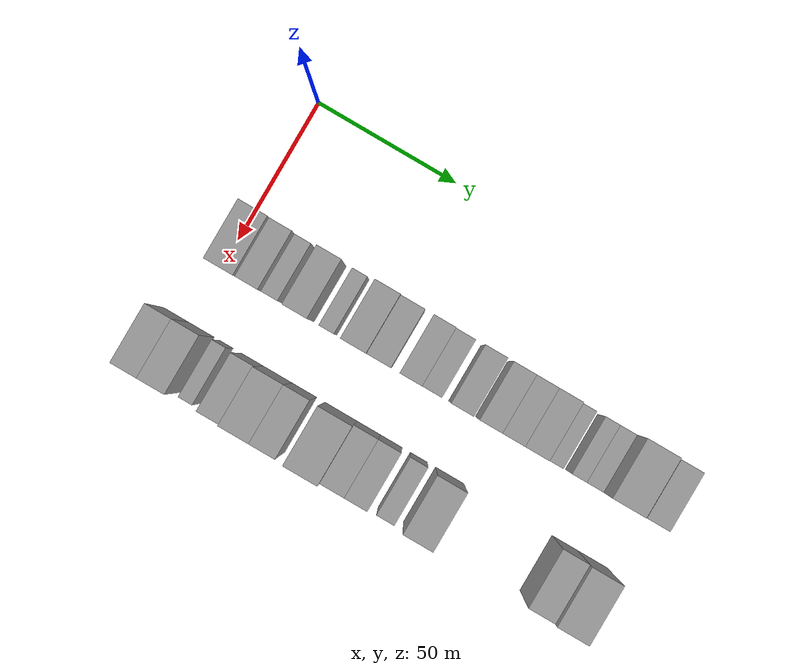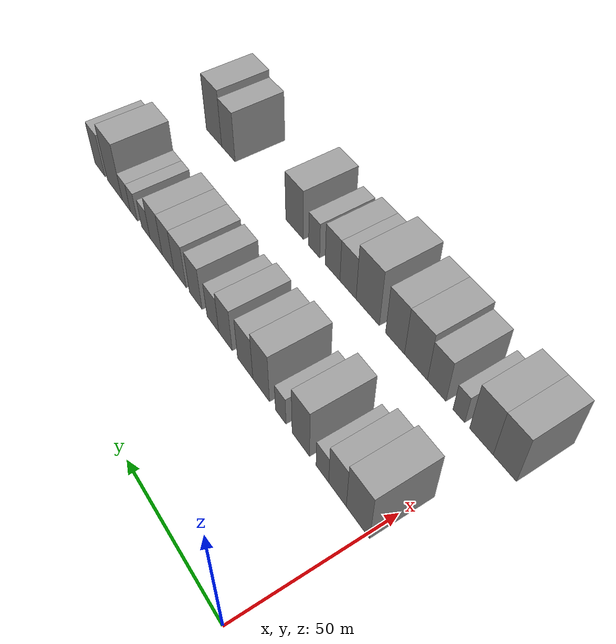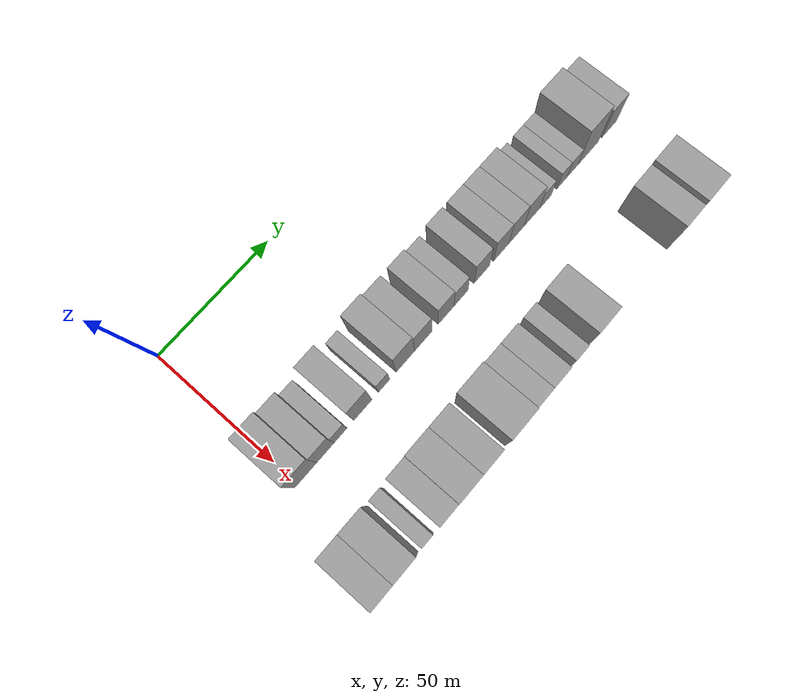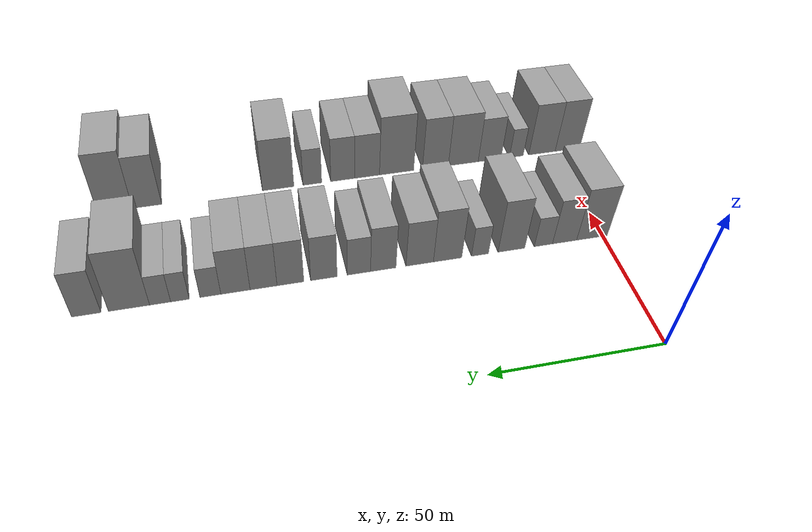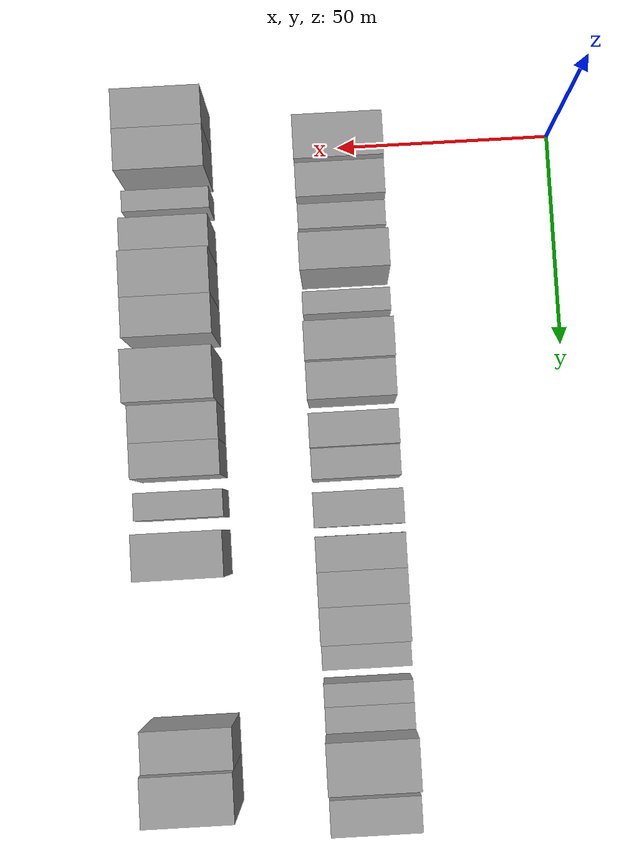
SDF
<sdf version="1.6">
 <world name="default">
  <model name="building_29">
   <static>1</static>
   <pose>50.0000 3.5850 0 0.000000 0.000000 0.000000</pose>
   <link name="link">
    <pose>0 0 10.50 0 0 0</pose>
    <collision name="collision"><geometry><box><size>20.0000 9.9423 21.0000</size></box></geometry></collision>
    <visual name="visual">
     <cast_shadows>0</cast_shadows>
     <geometry><box><size>20.0000 9.9423 21.0000</size></box></geometry>
     <material>
      <script>
       <uri>model://grey_wall/materials/scripts</uri>
       <uri>model://grey_wall/materials/textures</uri>
       <name>vrc/grey_wall</name>
      </script>
     </material>
    </visual>
   </link>
  </model>
  <model name="building_30">
   <static>1</static>
   <pose>50.0000 12.4400 0 0.000000 0.000000 0.000000</pose>
   <link name="link">
    <pose>0 0 9.00 0 0 0</pose>
    <collision name="collision"><geometry><box><size>20.0000 7.7675 18.0000</size></box></geometry></collision>
    <visual name="visual">
     <cast_shadows>0</cast_shadows>
     <geometry><box><size>20.0000 7.7675 18.0000</size></box></geometry>
     <material>
      <script>
       <uri>model://grey_wall/materials/scripts</uri>
       <uri>model://grey_wall/materials/textures</uri>
       <name>vrc/grey_wall</name>
      </script>
     </material>
    </visual>
   </link>
  </model>
  <model name="building_31">
   <static>1</static>
   <pose>50.0000 19.2083 0 0.000000 0.000000 0.000000</pose>
   <link name="link">
    <pose>0 0 6.00 0 0 0</pose>
    <collision name="collision"><geometry><box><size>20.0000 5.7690 12.0000</size></box></geometry></collision>
    <visual name="visual">
     <cast_shadows>0</cast_shadows>
     <geometry><box><size>20.0000 5.7690 12.0000</size></box></geometry>
     <material>
      <script>
       <uri>model://grey_wall/materials/scripts</uri>
       <uri>model://grey_wall/materials/textures</uri>
       <name>vrc/grey_wall</name>
      </script>
     </material>
    </visual>
   </link>
  </model>
  <model name="building_32">
   <static>1</static>
   <pose>50.0000 29.2972 0 0.000000 0.000000 0.000000</pose>
   <link name="link">
    <pose>0 0 10.50 0 0 0</pose>
    <collision name="collision"><geometry><box><size>20.0000 8.4088 21.0000</size></box></geometry></collision>
    <visual name="visual">
     <cast_shadows>0</cast_shadows>
     <geometry><box><size>20.0000 8.4088 21.0000</size></box></geometry>
     <material>
      <script>
       <uri>model://grey_wall/materials/scripts</uri>
       <uri>model://grey_wall/materials/textures</uri>
       <name>vrc/grey_wall</name>
      </script>
     </material>
    </visual>
   </link>
  </model>
  <model name="building_33">
   <static>1</static>
   <pose>50.0000 39.1456 0 0.000000 0.000000 0.000000</pose>
   <link name="link">
    <pose>0 0 6.00 0 0 0</pose>
    <collision name="collision"><geometry><box><size>20.0000 5.2881 12.0000</size></box></geometry></collision>
    <visual name="visual">
     <cast_shadows>0</cast_shadows>
     <geometry><box><size>20.0000 5.2881 12.0000</size></box></geometry>
     <material>
      <script>
       <uri>model://grey_wall/materials/scripts</uri>
       <uri>model://grey_wall/materials/textures</uri>
       <name>vrc/grey_wall</name>
      </script>
     </material>
    </visual>
   </link>
  </model>
  <model name="building_34">
   <static>1</static>
   <pose>50.0000 49.1430 0 0.000000 0.000000 0.000000</pose>
   <link name="link">
    <pose>0 0 10.50 0 0 0</pose>
    <collision name="collision"><geometry><box><size>20.0000 8.7066 21.0000</size></box></geometry></collision>
    <visual name="visual">
     <cast_shadows>0</cast_shadows>
     <geometry><box><size>20.0000 8.7066 21.0000</size></box></geometry>
     <material>
      <script>
       <uri>model://grey_wall/materials/scripts</uri>
       <uri>model://grey_wall/materials/textures</uri>
       <name>vrc/grey_wall</name>
      </script>
     </material>
    </visual>
   </link>
  </model>
  <model name="building_35">
   <static>1</static>
   <pose>50.0000 57.6699 0 0.000000 0.000000 0.000000</pose>
   <link name="link">
    <pose>0 0 9.00 0 0 0</pose>
    <collision name="collision"><geometry><box><size>20.0000 8.3474 18.0000</size></box></geometry></collision>
    <visual name="visual">
     <cast_shadows>0</cast_shadows>
     <geometry><box><size>20.0000 8.3474 18.0000</size></box></geometry>
     <material>
      <script>
       <uri>model://grey_wall/materials/scripts</uri>
       <uri>model://grey_wall/materials/textures</uri>
       <name>vrc/grey_wall</name>
      </script>
     </material>
    </visual>
   </link>
  </model>
  <model name="building_36">
   <static>1</static>
   <pose>50.0000 68.6641 0 0.000000 0.000000 0.000000</pose>
   <link name="link">
    <pose>0 0 9.00 0 0 0</pose>
    <collision name="collision"><geometry><box><size>20.0000 7.6409 18.0000</size></box></geometry></collision>
    <visual name="visual">
     <cast_shadows>0</cast_shadows>
     <geometry><box><size>20.0000 7.6409 18.0000</size></box></geometry>
     <material>
      <script>
       <uri>model://grey_wall/materials/scripts</uri>
       <uri>model://grey_wall/materials/textures</uri>
       <name>vrc/grey_wall</name>
      </script>
     </material>
    </visual>
   </link>
  </model>
  <model name="building_37">
   <static>1</static>
   <pose>50.0000 75.9450 0 0.000000 0.000000 0.000000</pose>
   <link name="link">
    <pose>0 0 7.50 0 0 0</pose>
    <collision name="collision"><geometry><box><size>20.0000 6.9210 15.0000</size></box></geometry></collision>
    <visual name="visual">
     <cast_shadows>0</cast_shadows>
     <geometry><box><size>20.0000 6.9210 15.0000</size></box></geometry>
     <material>
      <script>
       <uri>model://grey_wall/materials/scripts</uri>
       <uri>model://grey_wall/materials/textures</uri>
       <name>vrc/grey_wall</name>
      </script>
     </material>
    </visual>
   </link>
  </model>
  <model name="building_38">
   <static>1</static>
   <pose>50.0000 86.2765 0 0.000000 0.000000 0.000000</pose>
   <link name="link">
    <pose>0 0 9.00 0 0 0</pose>
    <collision name="collision"><geometry><box><size>20.0000 7.7419 18.0000</size></box></geometry></collision>
    <visual name="visual">
     <cast_shadows>0</cast_shadows>
     <geometry><box><size>20.0000 7.7419 18.0000</size></box></geometry>
     <material>
      <script>
       <uri>model://grey_wall/materials/scripts</uri>
       <uri>model://grey_wall/materials/textures</uri>
       <name>vrc/grey_wall</name>
      </script>
     </material>
    </visual>
   </link>
  </model>
  <model name="building_39">
   <static>1</static>
   <pose>50.0000 96.0376 0 0.000000 0.000000 0.000000</pose>
   <link name="link">
    <pose>0 0 9.00 0 0 0</pose>
    <collision name="collision"><geometry><box><size>20.0000 7.7805 18.0000</size></box></geometry></collision>
    <visual name="visual">
     <cast_shadows>0</cast_shadows>
     <geometry><box><size>20.0000 7.7805 18.0000</size></box></geometry>
     <material>
      <script>
       <uri>model://grey_wall/materials/scripts</uri>
       <uri>model://grey_wall/materials/textures</uri>
       <name>vrc/grey_wall</name>
      </script>
     </material>
    </visual>
   </link>
  </model>
  <model name="building_40">
   <static>1</static>
   <pose>50.0000 103.7960 0 0.000000 0.000000 0.000000</pose>
   <link name="link">
    <pose>0 0 9.00 0 0 0</pose>
    <collision name="collision"><geometry><box><size>20.0000 7.7362 18.0000</size></box></geometry></collision>
    <visual name="visual">
     <cast_shadows>0</cast_shadows>
     <geometry><box><size>20.0000 7.7362 18.0000</size></box></geometry>
     <material>
      <script>
       <uri>model://grey_wall/materials/scripts</uri>
       <uri>model://grey_wall/materials/textures</uri>
       <name>vrc/grey_wall</name>
      </script>
     </material>
    </visual>
   </link>
  </model>
  <model name="building_41">
   <static>1</static>
   <pose>50.0000 111.8288 0 0.000000 0.000000 0.000000</pose>
   <link name="link">
    <pose>0 0 9.00 0 0 0</pose>
    <collision name="collision"><geometry><box><size>20.0000 8.3295 18.0000</size></box></geometry></collision>
    <visual name="visual">
     <cast_shadows>0</cast_shadows>
     <geometry><box><size>20.0000 8.3295 18.0000</size></box></geometry>
     <material>
      <script>
       <uri>model://grey_wall/materials/scripts</uri>
       <uri>model://grey_wall/materials/textures</uri>
       <name>vrc/grey_wall</name>
      </script>
     </material>
    </visual>
   </link>
  </model>
  <model name="building_42">
   <static>1</static>
   <pose>50.0000 118.9388 0 0.000000 0.000000 0.000000</pose>
   <link name="link">
    <pose>0 0 6.00 0 0 0</pose>
    <collision name="collision"><geometry><box><size>20.0000 5.8905 12.0000</size></box></geometry></collision>
    <visual name="visual">
     <cast_shadows>0</cast_shadows>
     <geometry><box><size>20.0000 5.8905 12.0000</size></box></geometry>
     <material>
      <script>
       <uri>model://grey_wall/materials/scripts</uri>
       <uri>model://grey_wall/materials/textures</uri>
       <name>vrc/grey_wall</name>
      </script>
     </material>
    </visual>
   </link>
  </model>
  <model name="building_43">
   <static>1</static>
   <pose>50.0000 127.4671 0 0.000000 0.000000 0.000000</pose>
   <link name="link">
    <pose>0 0 6.00 0 0 0</pose>
    <collision name="collision"><geometry><box><size>20.0000 5.1661 12.0000</size></box></geometry></collision>
    <visual name="visual">
     <cast_shadows>0</cast_shadows>
     <geometry><box><size>20.0000 5.1661 12.0000</size></box></geometry>
     <material>
      <script>
       <uri>model://grey_wall/materials/scripts</uri>
       <uri>model://grey_wall/materials/textures</uri>
       <name>vrc/grey_wall</name>
      </script>
     </material>
    </visual>
   </link>
  </model>
  <model name="building_44">
   <static>1</static>
   <pose>50.0000 132.9723 0 0.000000 0.000000 0.000000</pose>
   <link name="link">
    <pose>0 0 6.00 0 0 0</pose>
    <collision name="collision"><geometry><box><size>20.0000 5.8444 12.0000</size></box></geometry></collision>
    <visual name="visual">
     <cast_shadows>0</cast_shadows>
     <geometry><box><size>20.0000 5.8444 12.0000</size></box></geometry>
     <material>
      <script>
       <uri>model://grey_wall/materials/scripts</uri>
       <uri>model://grey_wall/materials/textures</uri>
       <name>vrc/grey_wall</name>
      </script>
     </material>
    </visual>
   </link>
  </model>
  <model name="building_45">
   <static>1</static>
   <pose>50.0000 141.5381 0 0.000000 0.000000 0.000000</pose>
   <link name="link">
    <pose>0 0 12.00 0 0 0</pose>
    <collision name="collision"><geometry><box><size>20.0000 11.2872 24.0000</size></box></geometry></collision>
    <visual name="visual">
     <cast_shadows>0</cast_shadows>
     <geometry><box><size>20.0000 11.2872 24.0000</size></box></geometry>
     <material>
      <script>
       <uri>model://grey_wall/materials/scripts</uri>
       <uri>model://grey_wall/materials/textures</uri>
       <name>vrc/grey_wall</name>
      </script>
     </material>
    </visual>
   </link>
  </model>
  <model name="building_46">
   <static>1</static>
   <pose>50.0000 153.1510 0 0.000000 0.000000 0.000000</pose>
   <link name="link">
    <pose>0 0 9.00 0 0 0</pose>
    <collision name="collision"><geometry><box><size>20.0000 7.9388 18.0000</size></box></geometry></collision>
    <visual name="visual">
     <cast_shadows>0</cast_shadows>
     <geometry><box><size>20.0000 7.9388 18.0000</size></box></geometry>
     <material>
      <script>
       <uri>model://grey_wall/materials/scripts</uri>
       <uri>model://grey_wall/materials/textures</uri>
       <name>vrc/grey_wall</name>
      </script>
     </material>
    </visual>
   </link>
  </model>
  <model name="building_95">
   <static>1</static>
   <pose>90.0000 -4.9737 0 0.000000 0.000000 0.000000</pose>
   <link name="link">
    <pose>0 0 10.50 0 0 0</pose>
    <collision name="collision"><geometry><box><size>20.0000 8.9622 21.0000</size></box></geometry></collision>
    <visual name="visual">
     <cast_shadows>0</cast_shadows>
     <geometry><box><size>20.0000 8.9622 21.0000</size></box></geometry>
     <material>
      <script>
       <uri>model://grey_wall/materials/scripts</uri>
       <uri>model://grey_wall/materials/textures</uri>
       <name>vrc/grey_wall</name>
      </script>
     </material>
    </visual>
   </link>
  </model>
  <model name="building_96">
   <static>1</static>
   <pose>90.0000 4.2254 0 0.000000 0.000000 0.000000</pose>
   <link name="link">
    <pose>0 0 10.50 0 0 0</pose>
    <collision name="collision"><geometry><box><size>20.0000 9.4362 21.0000</size></box></geometry></collision>
    <visual name="visual">
     <cast_shadows>0</cast_shadows>
     <geometry><box><size>20.0000 9.4362 21.0000</size></box></geometry>
     <material>
      <script>
       <uri>model://grey_wall/materials/scripts</uri>
       <uri>model://grey_wall/materials/textures</uri>
       <name>vrc/grey_wall</name>
      </script>
     </material>
    </visual>
   </link>
  </model>
  <model name="building_97">
   <static>1</static>
   <pose>90.0000 13.3908 0 0.000000 0.000000 0.000000</pose>
   <link name="link">
    <pose>0 0 6.00 0 0 0</pose>
    <collision name="collision"><geometry><box><size>20.0000 4.8945 12.0000</size></box></geometry></collision>
    <visual name="visual">
     <cast_shadows>0</cast_shadows>
     <geometry><box><size>20.0000 4.8945 12.0000</size></box></geometry>
     <material>
      <script>
       <uri>model://grey_wall/materials/scripts</uri>
       <uri>model://grey_wall/materials/textures</uri>
       <name>vrc/grey_wall</name>
      </script>
     </material>
    </visual>
   </link>
  </model>
  <model name="building_98">
   <static>1</static>
   <pose>90.0000 22.8667 0 0.000000 0.000000 0.000000</pose>
   <link name="link">
    <pose>0 0 9.00 0 0 0</pose>
    <collision name="collision"><geometry><box><size>20.0000 8.0575 18.0000</size></box></geometry></collision>
    <visual name="visual">
     <cast_shadows>0</cast_shadows>
     <geometry><box><size>20.0000 8.0575 18.0000</size></box></geometry>
     <material>
      <script>
       <uri>model://grey_wall/materials/scripts</uri>
       <uri>model://grey_wall/materials/textures</uri>
       <name>vrc/grey_wall</name>
      </script>
     </material>
    </visual>
   </link>
  </model>
  <model name="building_99">
   <static>1</static>
   <pose>90.0000 32.1004 0 0.000000 0.000000 0.000000</pose>
   <link name="link">
    <pose>0 0 10.50 0 0 0</pose>
    <collision name="collision"><geometry><box><size>20.0000 10.4099 21.0000</size></box></geometry></collision>
    <visual name="visual">
     <cast_shadows>0</cast_shadows>
     <geometry><box><size>20.0000 10.4099 21.0000</size></box></geometry>
     <material>
      <script>
       <uri>model://grey_wall/materials/scripts</uri>
       <uri>model://grey_wall/materials/textures</uri>
       <name>vrc/grey_wall</name>
      </script>
     </material>
    </visual>
   </link>
  </model>
  <model name="building_100">
   <static>1</static>
   <pose>90.0000 41.7766 0 0.000000 0.000000 0.000000</pose>
   <link name="link">
    <pose>0 0 10.50 0 0 0</pose>
    <collision name="collision"><geometry><box><size>20.0000 8.9423 21.0000</size></box></geometry></collision>
    <visual name="visual">
     <cast_shadows>0</cast_shadows>
     <geometry><box><size>20.0000 8.9423 21.0000</size></box></geometry>
     <material>
      <script>
       <uri>model://grey_wall/materials/scripts</uri>
       <uri>model://grey_wall/materials/textures</uri>
       <name>vrc/grey_wall</name>
      </script>
     </material>
    </visual>
   </link>
  </model>
  <model name="building_101">
   <static>1</static>
   <pose>90.0000 55.0793 0 0.000000 0.000000 0.000000</pose>
   <link name="link">
    <pose>0 0 12.00 0 0 0</pose>
    <collision name="collision"><geometry><box><size>20.0000 11.6632 24.0000</size></box></geometry></collision>
    <visual name="visual">
     <cast_shadows>0</cast_shadows>
     <geometry><box><size>20.0000 11.6632 24.0000</size></box></geometry>
     <material>
      <script>
       <uri>model://grey_wall/materials/scripts</uri>
       <uri>model://grey_wall/materials/textures</uri>
       <name>vrc/grey_wall</name>
      </script>
     </material>
    </visual>
   </link>
  </model>
  <model name="building_102">
   <static>1</static>
   <pose>90.0000 65.1157 0 0.000000 0.000000 0.000000</pose>
   <link name="link">
    <pose>0 0 9.00 0 0 0</pose>
    <collision name="collision"><geometry><box><size>20.0000 8.4096 18.0000</size></box></geometry></collision>
    <visual name="visual">
     <cast_shadows>0</cast_shadows>
     <geometry><box><size>20.0000 8.4096 18.0000</size></box></geometry>
     <material>
      <script>
       <uri>model://grey_wall/materials/scripts</uri>
       <uri>model://grey_wall/materials/textures</uri>
       <name>vrc/grey_wall</name>
      </script>
     </material>
    </visual>
   </link>
  </model>
  <model name="building_103">
   <static>1</static>
   <pose>90.0000 73.2762 0 0.000000 0.000000 0.000000</pose>
   <link name="link">
    <pose>0 0 9.00 0 0 0</pose>
    <collision name="collision"><geometry><box><size>20.0000 7.9115 18.0000</size></box></geometry></collision>
    <visual name="visual">
     <cast_shadows>0</cast_shadows>
     <geometry><box><size>20.0000 7.9115 18.0000</size></box></geometry>
     <material>
      <script>
       <uri>model://grey_wall/materials/scripts</uri>
       <uri>model://grey_wall/materials/textures</uri>
       <name>vrc/grey_wall</name>
      </script>
     </material>
    </visual>
   </link>
  </model>
  <model name="building_104">
   <static>1</static>
   <pose>90.0000 83.3145 0 0.000000 0.000000 0.000000</pose>
   <link name="link">
    <pose>0 0 7.50 0 0 0</pose>
    <collision name="collision"><geometry><box><size>20.0000 6.1651 15.0000</size></box></geometry></collision>
    <visual name="visual">
     <cast_shadows>0</cast_shadows>
     <geometry><box><size>20.0000 6.1651 15.0000</size></box></geometry>
     <material>
      <script>
       <uri>model://grey_wall/materials/scripts</uri>
       <uri>model://grey_wall/materials/textures</uri>
       <name>vrc/grey_wall</name>
      </script>
     </material>
    </visual>
   </link>
  </model>
  <model name="building_105">
   <static>1</static>
   <pose>90.0000 94.5282 0 0.000000 0.000000 0.000000</pose>
   <link name="link">
    <pose>0 0 10.50 0 0 0</pose>
    <collision name="collision"><geometry><box><size>20.0000 10.2623 21.0000</size></box></geometry></collision>
    <visual name="visual">
     <cast_shadows>0</cast_shadows>
     <geometry><box><size>20.0000 10.2623 21.0000</size></box></geometry>
     <material>
      <script>
       <uri>model://grey_wall/materials/scripts</uri>
       <uri>model://grey_wall/materials/textures</uri>
       <name>vrc/grey_wall</name>
      </script>
     </material>
    </visual>
   </link>
  </model>
  <model name="building_106">
   <static>1</static>
   <pose>90.0000 136.3253 0 0.000000 0.000000 0.000000</pose>
   <link name="link">
    <pose>0 0 10.50 0 0 0</pose>
    <collision name="collision"><geometry><box><size>20.0000 9.1106 21.0000</size></box></geometry></collision>
    <visual name="visual">
     <cast_shadows>0</cast_shadows>
     <geometry><box><size>20.0000 9.1106 21.0000</size></box></geometry>
     <material>
      <script>
       <uri>model://grey_wall/materials/scripts</uri>
       <uri>model://grey_wall/materials/textures</uri>
       <name>vrc/grey_wall</name>
      </script>
     </material>
    </visual>
   </link>
  </model>
  <model name="building_107">
   <static>1</static>
   <pose>90.0000 146.2943 0 0.000000 0.000000 0.000000</pose>
   <link name="link">
    <pose>0 0 12.00 0 0 0</pose>
    <collision name="collision"><geometry><box><size>20.0000 10.8274 24.0000</size></box></geometry></collision>
    <visual name="visual">
     <cast_shadows>0</cast_shadows>
     <geometry><box><size>20.0000 10.8274 24.0000</size></box></geometry>
     <material>
      <script>
       <uri>model://grey_wall/materials/scripts</uri>
       <uri>model://grey_wall/materials/textures</uri>
       <name>vrc/grey_wall</name>
      </script>
     </material>
    </visual>
   </link>
  </model>
 </world>
</sdf>
